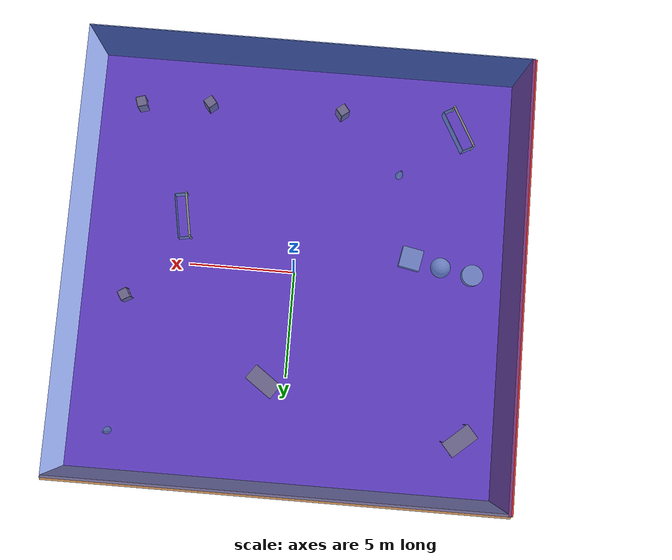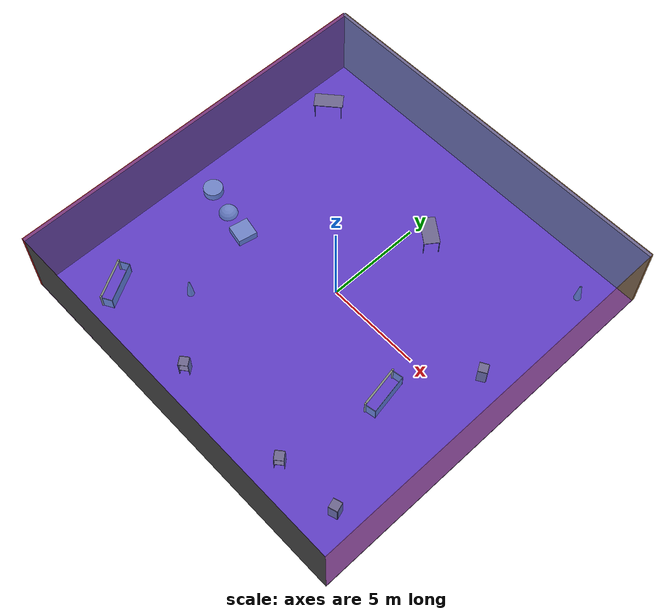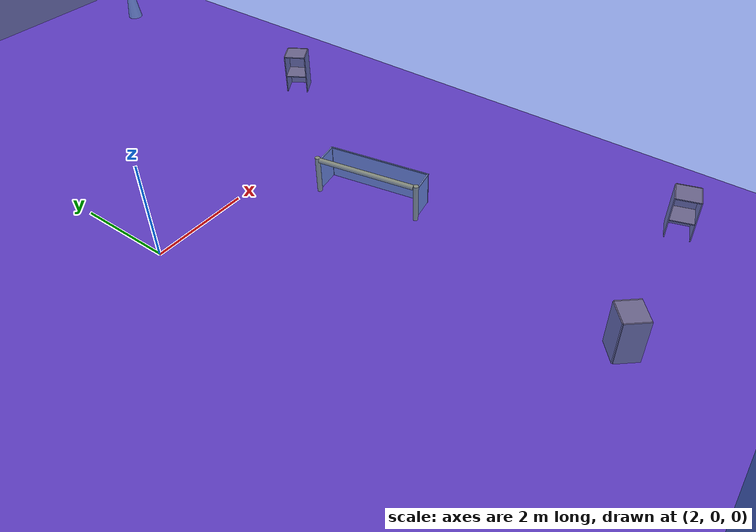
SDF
<sdf version="1.4">
 <world name="default">
  <physics type="ode">
   <max_step_size>0.001</max_step_size>
   <real_time_factor>1</real_time_factor>
   <real_time_update_rate>1000</real_time_update_rate>
   <gravity>0 0 -9.8</gravity>
  </physics>
  <scene><ambient>0.4 0.4 0.4 1</ambient><background>0.7 0.7 0.7 1</background><shadows>1</shadows></scene>
  <model name="Surrounding">
   <static>1</static>
   <link name="Ceiling">
    <collision name="Ceiling_Collision"><geometry><box><size>20 20 0.1</size></box></geometry></collision>
    <visual name="Ceiling_Visual">
     <geometry><box><size>20 20 0.1</size></box></geometry>
     <material>
      <script><uri>file://media/materials/scripts/gazebo.material</uri><name>Gazebo/BlueTransparent</name></script>
     </material>
    </visual>
    <pose>0 0 4.05 0 0 0</pose>
   </link>
   <link name="Wall_South">
    <collision name="Wall_South_Collision">
     <geometry><box><size>20 0 4</size></box></geometry>
     <pose>0 0 2 0 -0 0</pose>
    </collision>
    <visual name="Wall_South_Visual">
     <pose>0 0 2 0 -0 0</pose>
     <geometry><box><size>20 0 4</size></box></geometry>
     <material>
      <script><uri>file://media/materials/scripts/gazebo.material</uri><name>Gazebo/DarkGrey</name></script>
     </material>
    </visual>
    <velocity_decay><linear>0</linear><angular>0</angular></velocity_decay>
    <pose>0 -10 0 0 -0 0</pose>
   </link>
   <link name="Wall_East">
    <collision name="Wall_21_Collision">
     <geometry><box><size>20 0 4</size></box></geometry>
     <pose>0 0 2 0 -0 0</pose>
    </collision>
    <visual name="Wall_21_Visual">
     <pose>0 0 2 0 -0 0</pose>
     <geometry><box><size>20 0 4</size></box></geometry>
     <material>
      <script><uri>file://media/materials/scripts/gazebo.material</uri><name>Gazebo/GreyTransparent</name></script>
     </material>
    </visual>
    <velocity_decay><linear>0</linear><angular>0</angular></velocity_decay>
    <pose>10 0 0 0 -0 1.5708</pose>
   </link>
   <link name="Wall_North">
    <collision name="Wall_22_Collision">
     <geometry><box><size>20 0.2 4</size></box></geometry>
     <pose>0 0 2 0 -0 0</pose>
    </collision>
    <visual name="Wall_22_Visual">
     <pose>0 0 2 0 -0 0</pose>
     <geometry><box><size>20 0.2 4</size></box></geometry>
     <material>
      <script><uri>file://media/materials/scripts/gazebo.material</uri><name>Gazebo/WoodPallet</name></script>
     </material>
    </visual>
    <velocity_decay><linear>0</linear><angular>0</angular></velocity_decay>
    <pose>0 10 0 0 -0 0</pose>
   </link>
   <link name="Wall_West">
    <collision name="Wall_23_Collision">
     <geometry><box><size>20 0.2 4</size></box></geometry>
     <pose>0 0 2 0 -0 0</pose>
    </collision>
    <visual name="Wall_23_Visual">
     <pose>0 0 2 0 -0 0</pose>
     <geometry><box><size>20 0.2 4</size></box></geometry>
     <material>
      <script><uri>file://media/materials/scripts/gazebo.material</uri><name>Gazebo/RedGlow</name></script>
     </material>
    </visual>
    <velocity_decay><linear>0</linear><angular>0</angular></velocity_decay>
    <pose>-10 0 0 0 0 -1.5708</pose>
   </link>
   <link name="Ground_link">
    <collision name="collision">
     <pose>0 0 .05 0 -0 0</pose>
     <geometry><box><size>20 20 0.1</size></box></geometry>
    </collision>
    <visual name="visual">
     <pose>0 0 .05 0 -0 0</pose>
     <geometry><box><size>20 20 0.1</size></box></geometry>
     <material>
      <script><uri>file://media/materials/scripts/gazebo.material</uri><name>Gazebo/Purple</name></script>
     </material>
    </visual>
   </link>
   <static>1</static>
  </model>
  <spherical_coordinates>
   <surface_model>EARTH_WGS84</surface_model>
   <latitude_deg>0</latitude_deg>
   <longitude_deg>0</longitude_deg>
   <elevation>0</elevation>
   <heading_deg>0</heading_deg>
  </spherical_coordinates>
  <light name="lightball_0" type="diffuse">
   <diffuse>0.8 0.8 0.8 1</diffuse>
   <specular>0.2 0.2 0.2 1</specular>
   <attenuation>
    <range>100</range>
    <constant>0.7</constant>
    <linear>0.01</linear>
    <quadratic>0.001</quadratic>
   </attenuation>
   <direction>-0.5 0.1 -0.9</direction>
   <pose>-7.79972297984 -7.22706994866 2.89750348858 0 0 0</pose>
  </light>
  <light name="lightball_1" type="diffuse">
   <diffuse>0.8 0.8 0.8 1</diffuse>
   <specular>0.2 0.2 0.2 1</specular>
   <attenuation>
    <range>100</range>
    <constant>0.7</constant>
    <linear>0.01</linear>
    <quadratic>0.001</quadratic>
   </attenuation>
   <direction>-0.5 0.1 -0.9</direction>
   <pose>0.34677950508 -8.24005421536 1.99219514954 0 0 0</pose>
  </light>
  <light name="lightball_2" type="diffuse">
   <diffuse>0.8 0.8 0.8 1</diffuse>
   <specular>0.2 0.2 0.2 1</specular>
   <attenuation>
    <range>100</range>
    <constant>0.7</constant>
    <linear>0.01</linear>
    <quadratic>0.001</quadratic>
   </attenuation>
   <direction>-0.5 0.1 -0.9</direction>
   <pose>-0.371167456125 -0.798844710756 1.41084334714 0 0 0</pose>
  </light>
  <light name="lightball_3" type="diffuse">
   <diffuse>0.8 0.8 0.8 1</diffuse>
   <specular>0.2 0.2 0.2 1</specular>
   <attenuation>
    <range>100</range>
    <constant>0.7</constant>
    <linear>0.01</linear>
    <quadratic>0.001</quadratic>
   </attenuation>
   <direction>-0.5 0.1 -0.9</direction>
   <pose>0.672584878189 7.50380657821 2.78170856929 0 0 0</pose>
  </light>
  <light name="lightball_4" type="diffuse">
   <diffuse>0.8 0.8 0.8 1</diffuse>
   <specular>0.2 0.2 0.2 1</specular>
   <attenuation>
    <range>100</range>
    <constant>0.7</constant>
    <linear>0.01</linear>
    <quadratic>0.001</quadratic>
   </attenuation>
   <direction>-0.5 0.1 -0.9</direction>
   <pose>0.168384584178 0.640925782529 3.87305976757 0 0 0</pose>
  </light>
  <light name="lightball_5" type="diffuse">
   <diffuse>0.8 0.8 0.8 1</diffuse>
   <specular>0.2 0.2 0.2 1</specular>
   <attenuation>
    <range>100</range>
    <constant>0.7</constant>
    <linear>0.01</linear>
    <quadratic>0.001</quadratic>
   </attenuation>
   <direction>-0.5 0.1 -0.9</direction>
   <pose>-3.51147063865 7.73229969807 2.86721645869 0 0 0</pose>
  </light>
  <light name="lightball_6" type="diffuse">
   <diffuse>0.8 0.8 0.8 1</diffuse>
   <specular>0.2 0.2 0.2 1</specular>
   <attenuation>
    <range>100</range>
    <constant>0.7</constant>
    <linear>0.01</linear>
    <quadratic>0.001</quadratic>
   </attenuation>
   <direction>-0.5 0.1 -0.9</direction>
   <pose>4.68831533182 0.992755532264 3.62482041252 0 0 0</pose>
  </light>
  <light name="lightball_7" type="diffuse">
   <diffuse>0.8 0.8 0.8 1</diffuse>
   <specular>0.2 0.2 0.2 1</specular>
   <attenuation>
    <range>100</range>
    <constant>0.7</constant>
    <linear>0.01</linear>
    <quadratic>0.001</quadratic>
   </attenuation>
   <direction>-0.5 0.1 -0.9</direction>
   <pose>-9.4289857703 0.111870802836 1.82024708365 0 0 0</pose>
  </light>
  <light name="lightball_8" type="diffuse">
   <diffuse>0.8 0.8 0.8 1</diffuse>
   <specular>0.2 0.2 0.2 1</specular>
   <attenuation>
    <range>100</range>
    <constant>0.7</constant>
    <linear>0.01</linear>
    <quadratic>0.001</quadratic>
   </attenuation>
   <direction>-0.5 0.1 -0.9</direction>
   <pose>0.480783720055 -4.04422102132 2.05659543572 0 0 0</pose>
  </light>
  <light name="lightball_9" type="diffuse">
   <diffuse>0.8 0.8 0.8 1</diffuse>
   <specular>0.2 0.2 0.2 1</specular>
   <attenuation>
    <range>100</range>
    <constant>0.7</constant>
    <linear>0.01</linear>
    <quadratic>0.001</quadratic>
   </attenuation>
   <direction>-0.5 0.1 -0.9</direction>
   <pose>-9.94442931873 -8.13517736671 1.01624876081 0 0 0</pose>
  </light>
  <light name="lightball_10" type="diffuse">
   <diffuse>0.8 0.8 0.8 1</diffuse>
   <specular>0.2 0.2 0.2 1</specular>
   <attenuation>
    <range>100</range>
    <constant>0.7</constant>
    <linear>0.01</linear>
    <quadratic>0.001</quadratic>
   </attenuation>
   <direction>-0.5 0.1 -0.9</direction>
   <pose>9.643383745 0.852149199988 2.22029380791 0 0 0</pose>
  </light>
  <light name="lightball_11" type="diffuse">
   <diffuse>0.8 0.8 0.8 1</diffuse>
   <specular>0.2 0.2 0.2 1</specular>
   <attenuation>
    <range>100</range>
    <constant>0.7</constant>
    <linear>0.01</linear>
    <quadratic>0.001</quadratic>
   </attenuation>
   <direction>-0.5 0.1 -0.9</direction>
   <pose>-2.17156507499 -9.36294037581 1.88862864985 0 0 0</pose>
  </light>
  <light name="lightball_12" type="diffuse">
   <diffuse>0.8 0.8 0.8 1</diffuse>
   <specular>0.2 0.2 0.2 1</specular>
   <attenuation>
    <range>100</range>
    <constant>0.7</constant>
    <linear>0.01</linear>
    <quadratic>0.001</quadratic>
   </attenuation>
   <direction>-0.5 0.1 -0.9</direction>
   <pose>9.42816782958 -4.96653656968 1.19504110643 0 0 0</pose>
  </light>
  <include>
   <uri>model://robocup_3Dsim_goal</uri>
   <pose>-7.5536136227 -7.62689820834 0 0 0 0.507312032252</pose>
  </include>
  <include>
   <uri>model://textured_shapes</uri>
   <pose>-6.96861683106 -0.810844435046 0 0 0 1.37782182836</pose>
  </include>
  <include><uri>model://table</uri><pose>-8.22754639151 7.2133402148 0 0 0 0.711702370681</pose></include>
  <include>
   <uri>model://construction_cone</uri>
   <pose>-4.67701937179 -5.12371659268 0 0 0 0.462278067437</pose>
  </include>
  <include><uri>model://cabinet</uri><pose>-1.69778264131 -7.89714592957 0 0 0 2.24204490396</pose></include>
  <include><uri>model://table</uri><pose>0.996876075265 5.26417121649 0 0 0 2.5171980126</pose></include>
  <include><uri>model://cabinet</uri><pose>4.66870272841 -7.78983104221 0 0 0 2.26744800515</pose></include>
  <include>
   <uri>model://robocup_3Dsim_goal</uri>
   <pose>5.23779320668 -2.29358106168 0 0 0 0.17336539779</pose>
  </include>
  <include><uri>model://cabinet</uri><pose>7.95354814003 -7.54528648114 0 0 0 0.302063879339</pose></include>
  <include><uri>model://cabinet</uri><pose>7.84596873911 1.74123420987 0 0 0 0.532569157035</pose></include>
  <include>
   <uri>model://construction_cone</uri>
   <pose>8.1167457441 8.12595384496 0 0 0 1.94741181383</pose>
  </include>
 </world>
</sdf>

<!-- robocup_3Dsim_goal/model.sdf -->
<sdf version="1.5">
  <model name="robocup_3d_goal">
    <static>true</static>
    <link name="left_post">
      <pose>0 1.05 0.45 0 0 0</pose>
      <collision name="collision">
        <geometry>
          <cylinder>
            <radius>0.05</radius>
            <length>0.9</length>
          </cylinder>
        </geometry>
      </collision>
      <visual name="visual">
        <geometry>
          <cylinder>
            <radius>0.05</radius>
            <length>0.9</length>
          </cylinder>
        </geometry>
        <material>
          <script>
            <uri>file://media/materials/scripts/gazebo.material</uri>
            <name>Gazebo/ZincYellow</name>
          </script>
        </material>
      </visual>
    </link>
    <link name="left_support_horiz_lower">
      <pose>0.30 1.05 0.01 0 0 0</pose>
      <collision name="collision">
        <geometry>
          <box>
            <size>0.50 0.02 0.02</size>
          </box>
        </geometry>
      </collision>
      <visual name="visual">
        <geometry>
          <box>
            <size>0.50 0.02 0.02</size>
          </box>
        </geometry>
        <material>
          <script>
            <uri>file://media/materials/scripts/gazebo.material</uri>
            <name>Gazebo/White</name>
          </script>
        </material>
      </visual>
    </link>
    <link name="left_support_horiz_upper">
      <pose>0.30 1.05 0.79 0 0 0</pose>
      <collision name="collision">
        <geometry>
          <box>
            <size>0.50 0.02 0.02</size>
          </box>
        </geometry>
      </collision>
      <visual name="visual">
        <geometry>
          <box>
            <size>0.50 0.02 0.02</size>
          </box>
        </geometry>
        <material>
          <script>
            <uri>file://media/materials/scripts/gazebo.material</uri>
            <name>Gazebo/White</name>
          </script>
        </material>
      </visual>
    </link>
    <link name="left_support_vertical">
      <pose>0.56 1.05 0.4 0 1.5708 0</pose>
      <collision name="collision">
        <geometry>
          <box>
            <size>0.80 0.02 0.02</size>
          </box>
        </geometry>
      </collision>
      <visual name="visual">
        <geometry>
          <box>
            <size>0.80 0.02 0.02</size>
          </box>
        </geometry>
        <material>
          <script>
            <uri>file://media/materials/scripts/gazebo.material</uri>
            <name>Gazebo/White</name>
          </script>
        </material>
      </visual>
    </link>
    <link name="right_support_horiz_lower">
      <pose>0.30 -1.05 0.01 0 0 0</pose>
      <collision name="collision">
        <geometry>
          <box>
            <size>0.50 0.02 0.02</size>
          </box>
        </geometry>
      </collision>
      <visual name="visual">
        <geometry>
          <box>
            <size>0.50 0.02 0.02</size>
          </box>
        </geometry>
        <material>
          <script>
            <uri>file://media/materials/scripts/gazebo.material</uri>
            <name>Gazebo/White</name>
          </script>
        </material>
      </visual>
    </link>
    <link name="right_support_horiz_upper">
      <pose>0.30 -1.05 0.79 0 0 0</pose>
      <collision name="collision">
        <geometry>
          <box>
            <size>0.50 0.02 0.02</size>
          </box>
        </geometry>
      </collision>
      <visual name="visual">
        <geometry>
          <box>
            <size>0.50 0.02 0.02</size>
          </box>
        </geometry>
        <material>
          <script>
            <uri>file://media/materials/scripts/gazebo.material</uri>
            <name>Gazebo/White</name>
          </script>
        </material>
      </visual>
    </link>
    <link name="right_support_vertical">
      <pose>0.56 -1.05 0.4 0 1.5708 0</pose>
      <collision name="collision">
        <geometry>
          <box>
            <size>0.80 0.02 0.02</size>
          </box>
        </geometry>
      </collision>
      <visual name="visual">
        <geometry>
          <box>
            <size>0.80 0.02 0.02</size>
          </box>
        </geometry>
        <material>
          <script>
            <uri>file://media/materials/scripts/gazebo.material</uri>
            <name>Gazebo/White</name>
          </script>
        </material>
      </visual>
    </link>
    <link name="center_support_horiz_lower">
      <pose>0.56 0 0.01 0 1.5708 0</pose>
      <collision name="collision">
        <geometry>
          <box>
            <size>0.02 2.08 0.02</size>
          </box>
        </geometry>
      </collision>
      <visual name="visual">
        <geometry>
          <box>
            <size>0.02 2.08 0.02</size>
          </box>
        </geometry>
        <material>
          <script>
            <uri>file://media/materials/scripts/gazebo.material</uri>
            <name>Gazebo/White</name>
          </script>
        </material>
      </visual>
    </link>
    <link name="center_support_horiz_upper">
      <pose>0.56 0 0.79 0 1.5708 0</pose>
      <collision name="collision">
        <geometry>
          <box>
            <size>0.02 2.08 0.02</size>
          </box>
        </geometry>
      </collision>
      <visual name="visual">
        <geometry>
          <box>
            <size>0.02 2.08 0.02</size>
          </box>
        </geometry>
        <material>
          <script>
            <uri>file://media/materials/scripts/gazebo.material</uri>
            <name>Gazebo/White</name>
          </script>
        </material>
      </visual>
    </link>
    <link name="right_post">
      <pose>0 -1.05 0.45 0 0 0</pose>
      <collision name="collision">
        <geometry>
          <cylinder>
            <radius>0.05</radius>
            <length>0.9</length>
          </cylinder>
        </geometry>
      </collision>
      <visual name="visual">
        <geometry>
          <cylinder>
            <radius>0.05</radius>
            <length>0.9</length>
          </cylinder>
        </geometry>
        <material>
          <script>
            <uri>file://media/materials/scripts/gazebo.material</uri>
            <name>Gazebo/ZincYellow</name>
          </script>
        </material>
      </visual>
    </link>
    <link name="crossbar">
      <pose>0 0 0.85 1.57 1.57 0</pose>
      <collision name="collision">
        <geometry>
          <cylinder>
            <radius>0.05</radius>
            <length>2.0</length>
          </cylinder>
        </geometry>
      </collision>
      <visual name="visual">
        <geometry>
          <cylinder>
            <radius>0.05</radius>
            <length>2.0</length>
          </cylinder>
        </geometry>
        <material>
          <script>
            <uri>file://media/materials/scripts/gazebo.material</uri>
            <name>Gazebo/ZincYellow</name>
          </script>
        </material>
      </visual>
    </link>
    <link name="center_net">
      <pose>0.56 0 0.40 0 0 0</pose>
      <collision name="collision">
        <geometry>
          <box>
            <size>0.01 2.1 0.80</size>
          </box>
        </geometry>
      </collision>
      <visual name="visual">
        <geometry>
          <box>
            <size>0.01 2.1 0.80</size>
          </box>
        </geometry>
        <material>
          <script>
            <uri>model://../model_source/models/robocup09_spl_field/materials/scripts/</uri>
            <uri>model://../model_source/models/robocup09_spl_field/materials/textures/</uri>
            <name>RoboCup/Net</name>
          </script>
        </material>
      </visual>
    </link>
    <link name="left_net">
      <pose>0.30 1.05 0.40 0 0 0</pose>
      <collision name="collision">
        <geometry>
          <box>
            <size>0.50 0.01 0.76</size>
          </box>
        </geometry>
      </collision>
      <visual name="visual">
        <geometry>
          <box>
            <size>0.50 0.01 0.76</size>
          </box>
        </geometry>
        <material>
          <script>
            <uri>model://../model_source/models/robocup09_spl_field/materials/scripts/</uri>
            <uri>model://../model_source/models/robocup09_spl_field/materials/textures/</uri>
            <name>RoboCup/Net</name>
          </script>
        </material>
      </visual>
    </link>
    <link name="right_net">
      <pose>0.30 -1.05 0.40 0 0 0</pose>
      <collision name="collision">
        <geometry>
          <box>
            <size>0.50 0.01 0.76</size>
          </box>
        </geometry>
      </collision>
      <visual name="visual">
        <geometry>
          <box>
            <size>0.50 0.01 0.76</size>
          </box>
        </geometry>
        <material>
          <script>
            <uri>model://../model_source/models/robocup09_spl_field/materials/scripts/</uri>
            <uri>model://../model_source/models/robocup09_spl_field/materials/textures/</uri>
            <name>RoboCup/Net</name>
          </script>
        </material>
      </visual>
    </link>
  </model>
</sdf>

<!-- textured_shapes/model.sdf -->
<sdf version="1.6">
  <model name="textured_shapes">
    <pose>0 0 0.5 0 0 0</pose>
    <link name="box">
      <pose>0 -1.5 0 0 0 0</pose>
      <collision name="collision">
        <geometry>
          <box>
            <size>1 1 1</size>
          </box>
        </geometry>
      </collision>
      <visual name="visual">
        <geometry>
          <box>
            <size>1 1 1</size>
          </box>
        </geometry>
        <material>
          <script>
            <uri>model://../model_source/models/textured_shapes/materials/scripts</uri>
            <uri>model://../model_source/models/textured_shapes/materials/textures</uri>
            <name>TexturedShape/Squares</name>
          </script>
        </material>
      </visual>
    </link>
    <link name="sphere">
      <collision name="collision">
        <geometry>
          <sphere>
            <radius>0.5</radius>
          </sphere>
        </geometry>
      </collision>
      <visual name="visual">
        <geometry>
          <sphere>
            <radius>0.5</radius>
          </sphere>
        </geometry>
        <material>
          <script>
            <uri>model://../model_source/models/textured_shapes/materials/scripts</uri>
            <uri>model://../model_source/models/textured_shapes/materials/textures</uri>
            <name>TexturedShape/Squares</name>
          </script>
        </material>
      </visual>
    </link>
    <link name="cylinder">
      <pose>0 1.5 0 0 0 0</pose>
      <collision name="collision">
        <geometry>
          <cylinder>
            <radius>0.5</radius>
            <length>1</length>
          </cylinder>
        </geometry>
      </collision>
      <visual name="visual">
        <geometry>
          <cylinder>
            <radius>0.5</radius>
            <length>1</length>
          </cylinder>
        </geometry>
        <material>
          <script>
            <uri>model://../model_source/models/textured_shapes/materials/scripts</uri>
            <uri>model://../model_source/models/textured_shapes/materials/textures</uri>
            <name>TexturedShape/Squares</name>
          </script>
        </material>
      </visual>
    </link>
  </model>
</sdf>

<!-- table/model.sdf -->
<sdf version="1.5">
  <model name="table">
    <static>true</static>
    <link name="link">
      <collision name="surface">
        <pose>0 0 1.0 0 0 0</pose>
        <geometry>
          <box>
            <size>1.5 0.8 0.03</size>
          </box>
        </geometry>
        <surface>
          <friction>
            <ode>
              <mu>0.6</mu>
              <mu2>0.6</mu2>
            </ode>
          </friction>
        </surface>
      </collision>
      <visual name="visual1">
        <pose>0 0 1.0 0 0 0</pose>
        <geometry>
          <box>
            <size>1.5 0.8 0.03</size>
          </box>
        </geometry>
        <material>
          <script>
            <uri>model://media/materials/scripts/gazebo.material</uri>
            <name>Gazebo/Wood</name>
          </script>
        </material>
      </visual>
      <collision name="front_left_leg">
        <pose>0.68 0.38 0.5 0 0 0</pose>
        <geometry>
          <cylinder>
            <radius>0.02</radius>
            <length>1.0</length>
          </cylinder>
        </geometry>
      </collision>
      <visual name="front_left_leg">
        <pose>0.68 0.38 0.5 0 0 0</pose>
        <geometry>
          <cylinder>
            <radius>0.02</radius>
            <length>1.0</length>
          </cylinder>
        </geometry>
        <material>
          <script>
            <uri>model://media/materials/scripts/gazebo.material</uri>
            <name>Gazebo/Grey</name>
          </script>
        </material>
      </visual>
      <collision name="front_right_leg">
        <pose>0.68 -0.38 0.5 0 0 0</pose>
        <geometry>
          <cylinder>
            <radius>0.02</radius>
            <length>1.0</length>
          </cylinder>
        </geometry>
      </collision>
      <visual name="front_right_leg">
        <pose>0.68 -0.38 0.5 0 0 0</pose>
        <geometry>
          <cylinder>
            <radius>0.02</radius>
            <length>1.0</length>
          </cylinder>
        </geometry>
        <material>
          <script>
            <uri>model://media/materials/scripts/gazebo.material</uri>
            <name>Gazebo/Grey</name>
          </script>
        </material>
      </visual>
      <collision name="back_right_leg">
        <pose>-0.68 -0.38 0.5 0 0 0</pose>
        <geometry>
          <cylinder>
            <radius>0.02</radius>
            <length>1.0</length>
          </cylinder>
        </geometry>
      </collision>
      <visual name="back_right_leg">
        <pose>-0.68 -0.38 0.5 0 0 0</pose>
        <geometry>
          <cylinder>
            <radius>0.02</radius>
            <length>1.0</length>
          </cylinder>
        </geometry>
        <material>
          <script>
            <uri>model://media/materials/scripts/gazebo.material</uri>
            <name>Gazebo/Grey</name>
          </script>
        </material>
      </visual>
      <collision name="back_left_leg">
        <pose>-0.68 0.38 0.5 0 0 0</pose>
        <geometry>
          <cylinder>
            <radius>0.02</radius>
            <length>1.0</length>
          </cylinder>
        </geometry>
      </collision>
      <visual name="back_left_leg">
        <pose>-0.68 0.38 0.5 0 0 0</pose>
        <geometry>
          <cylinder>
            <radius>0.02</radius>
            <length>1.0</length>
          </cylinder>
        </geometry>
        <material>
          <script>
            <uri>model://media/materials/scripts/gazebo.material</uri>
            <name>Gazebo/Grey</name>
          </script>
        </material>
      </visual>
    </link>
  </model>
</sdf>

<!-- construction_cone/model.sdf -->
<sdf version="1.5">
  <model name="Construction Cone">
    <link name="link">
      <collision name="collision">
        <geometry>
          <mesh>
            <scale>10 10 10</scale>
            <uri>file://isr-testbed/construction_cone/meshes/construction_cone.dae</uri>
          </mesh>
        </geometry>
      </collision>
      <visual name="visual">
        <geometry>
          <mesh>
            <scale>10 10 10</scale>
            <uri>file://isr-testbed/construction_cone/meshes/construction_cone.dae</uri>
          </mesh>
        </geometry>
      </visual>
    </link>
  </model>
</sdf>

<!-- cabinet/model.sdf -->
<sdf version="1.5">
  <model name="cabinet">
    <static>true</static>
    <link name="cabinet_bottom_plate">
      <inertial>
        <pose>0 0 -1 0 0 0</pose>
        <inertia>
          <ixx>2.050000</ixx>
          <ixy>0</ixy>
          <ixz>0</ixz>
          <iyy>2.050000</iyy>
          <iyz>0</iyz>
          <izz>2.050000</izz>
        </inertia>
        <mass>25.000000</mass>
      </inertial>
      <collision name="cabinet_bottom_plate_geom">
        <pose>0 0 0.010000 0 0 0</pose>
        <geometry>
          <box>
            <size>0.450000 0.450000 0.020000</size>
          </box>
        </geometry>
      </collision>
      <visual name="cabinet_bottom_plate_geom_visual">
        <pose>0 0 0.010000 0 0 0</pose>
        <geometry>
          <box>
            <size>0.450000 0.450000 0.020000</size>
          </box>
        </geometry>
        <material>
          <script>
            <uri>model://media/materials/scripts/gazebo.material</uri>
            <name>Gazebo/Wood</name>
          </script>
        </material>
      </visual>
      <collision name="cabinet_bottom_plate_geom_cabinet_back_plate">
        <pose>0.235000 0 0.510000 0 0 0</pose>
        <geometry>
          <box>
            <size>0.020000 0.450000 1.020000</size>
          </box>
        </geometry>
      </collision>
      <visual name="cabinet_bottom_plate_geom_cabinet_back_plate_visual">
        <pose>0.235000 0 0.510000 0 0 0</pose>
        <geometry>
          <box>
            <size>0.020000 0.450000 1.020000</size>
          </box>
        </geometry>
        <material>
          <script>
            <uri>model://media/materials/scripts/gazebo.material</uri>
            <name>Gazebo/Wood</name>
          </script>
        </material>
      </visual>
      <collision name="cabinet_bottom_plate_geom_cabinet_left_plate">
        <pose>0 0.235000 0.510000 0 0 0</pose>
        <geometry>
          <box>
            <size>0.450000 0.020000 1.020000</size>
          </box>
        </geometry>
      </collision>
      <visual name="cabinet_bottom_plate_geom_cabinet_left_plate_visual">
        <pose>0 0.235000 0.510000 0 0 0</pose>
        <geometry>
          <box>
            <size>0.450000 0.020000 1.020000</size>
          </box>
        </geometry>
        <material>
          <script>
            <uri>model://media/materials/scripts/gazebo.material</uri>
            <name>Gazebo/Wood</name>
          </script>
        </material>
      </visual>
      <collision name="cabinet_bottom_plate_geom_cabinet_middle_plate">
        <pose>0 0 0.510000 0 0 0</pose>
        <geometry>
          <box>
            <size>0.450000 0.450000 0.020000</size>
          </box>
        </geometry>
      </collision>
      <visual name="cabinet_bottom_plate_geom_cabinet_middle_plate_visual">
        <pose>0 0 0.510000 0 0 0</pose>
        <geometry>
          <box>
            <size>0.450000 0.450000 0.020000</size>
          </box>
        </geometry>
        <material>
          <script>
            <uri>model://media/materials/scripts/gazebo.material</uri>
            <name>Gazebo/Wood</name>
          </script>
        </material>
      </visual>
      <collision name="cabinet_bottom_plate_geom_cabinet_right_plate">
        <pose>0 -0.235000 0.510000 0 0 0</pose>
        <geometry>
          <box>
            <size>0.450000 0.020000 1.020000</size>
          </box>
        </geometry>
      </collision>
      <visual name="cabinet_bottom_plate_geom_cabinet_right_plate_visual">
        <pose>0 -0.235000 0.510000 0 0 0</pose>
        <geometry>
          <box>
            <size>0.450000 0.020000 1.020000</size>
          </box>
        </geometry>
        <material>
          <script>
            <uri>model://media/materials/scripts/gazebo.material</uri>
            <name>Gazebo/Wood</name>
          </script>
        </material>
      </visual>
      <collision name="cabinet_bottom_plate_geom_cabinet_top_plate">
        <pose>0 0 1.010000 0 0 0</pose>
        <geometry>
          <box>
            <size>0.450000 0.450000 0.020000</size>
          </box>
        </geometry>
      </collision>
      <visual name="cabinet_bottom_plate_geom_cabinet_top_plate_visual">
        <pose>0 0 1.010000 0 0 0</pose>
        <geometry>
          <box>
            <size>0.450000 0.450000 0.020000</size>
          </box>
        </geometry>
        <material>
          <script>
            <uri>model://media/materials/scripts/gazebo.material</uri>
            <name>Gazebo/Wood</name>
          </script>
        </material>
      </visual>
    </link>
  </model>
</sdf>
